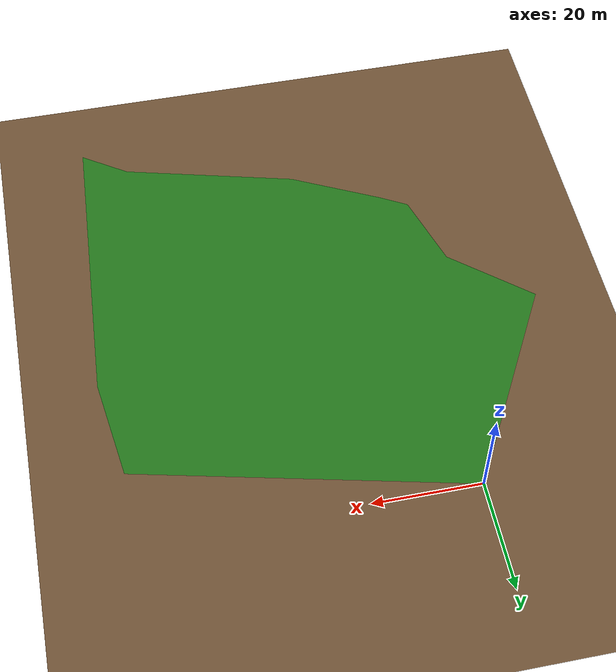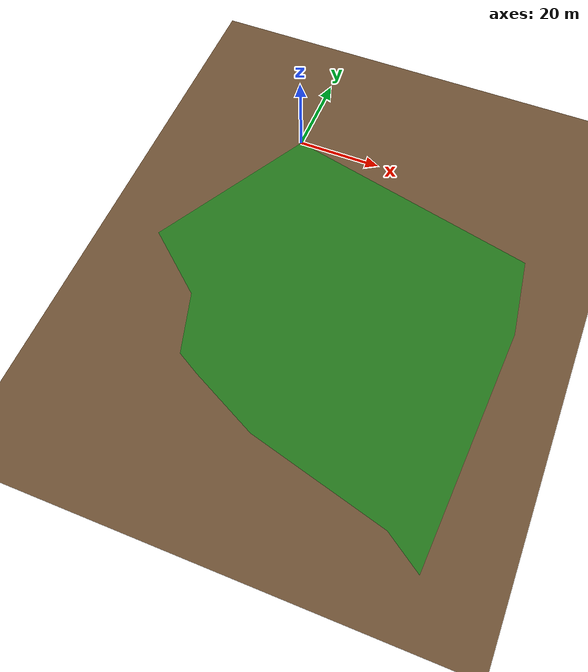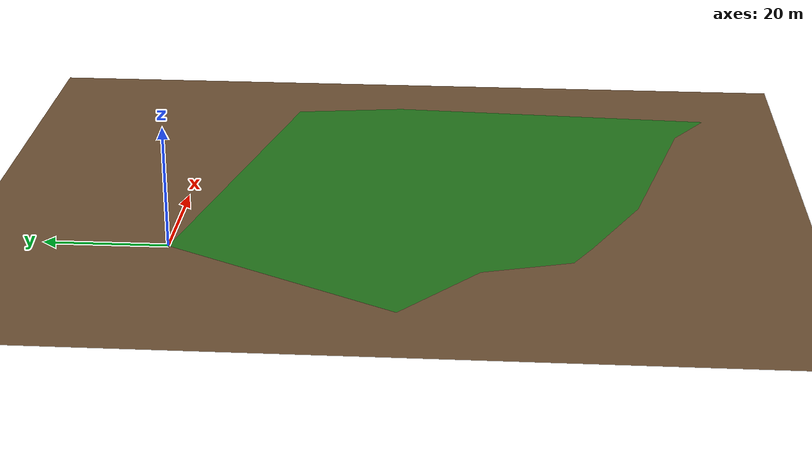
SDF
<?xml version="1.0"?>
<sdf version="1.9">
  <world name="crop_field">
    <physics type="ode">
      <max_step_size>0.004</max_step_size>
      <real_time_factor>1.0</real_time_factor>
      <real_time_update_rate>250</real_time_update_rate>
    </physics>
    <gravity>0 0 -9.8</gravity>
    <magnetic_field>6e-06 2.3e-05 -4.2e-05</magnetic_field>
    <atmosphere type="adiabatic"/>

    <plugin name="gz::sim::systems::Physics" filename="gz-sim-physics-system"/>
    <plugin name="gz::sim::systems::UserCommands" filename="gz-sim-user-commands-system"/>
    <plugin name="gz::sim::systems::SceneBroadcaster" filename="gz-sim-scene-broadcaster-system"/>
    <plugin name="gz::sim::systems::Contact" filename="gz-sim-contact-system"/>
    <plugin name="gz::sim::systems::Imu" filename="gz-sim-imu-system"/>
    <plugin name="gz::sim::systems::Magnetometer" filename="gz-sim-magnetometer-system"/>
    <plugin name="gz::sim::systems::AirPressure" filename="gz-sim-air-pressure-system"/>
    <plugin name="gz::sim::systems::AirSpeed" filename="gz-sim-air-speed-system"/>
    <plugin name="gz::sim::systems::ApplyLinkWrench" filename="gz-sim-apply-link-wrench-system"/>
    <plugin name="gz::sim::systems::NavSat" filename="gz-sim-navsat-system"/>
    <plugin name="gz::sim::systems::Sensors" filename="gz-sim-sensors-system">
      <render_engine>ogre2</render_engine>
    </plugin>

    <scene>
      <grid>false</grid>
      <ambient>0.4 0.4 0.4 1</ambient>
      <background>0.55 0.75 0.95 1</background>
      <shadows>true</shadows>
    </scene>

    <spherical_coordinates>
      <surface_model>EARTH_WGS84</surface_model>
      <world_frame_orientation>ENU</world_frame_orientation>
      <latitude_deg>0.0</latitude_deg>
      <longitude_deg>0.0</longitude_deg>
      <elevation>0.0</elevation>
      <heading_deg>0</heading_deg>
    </spherical_coordinates>

    <light name="sunUTC" type="directional">
      <pose>0 0 500 0 0 0</pose>
      <cast_shadows>true</cast_shadows>
      <intensity>1.0</intensity>
      <direction>0.001 0.625 -0.78</direction>
      <diffuse>0.904 0.904 0.904 1</diffuse>
      <specular>0.271 0.271 0.271 1</specular>
      <attenuation>
        <range>2000</range>
        <linear>0</linear>
        <constant>1</constant>
        <quadratic>0</quadratic>
      </attenuation>
    </light>

    <!-- Bare-earth ground plane surrounding the field -->
    <model name="ground_plane">
      <static>true</static>
      <link name="link">
        <collision name="collision">
          <geometry>
            <plane>
              <normal>0 0 1</normal>
              <size>500 500</size>
            </plane>
          </geometry>
          <surface>
            <friction>
              <ode/>
            </friction>
            <bounce/>
            <contact/>
          </surface>
        </collision>
        <visual name="visual">
          <geometry>
            <plane>
              <normal>0 0 1</normal>
              <size>500 500</size>
            </plane>
          </geometry>
          <material>
            <ambient>0.30 0.22 0.14 1</ambient>
            <diffuse>0.42 0.31 0.20 1</diffuse>
            <specular>0.0 0.0 0.0 1</specular>
          </material>
        </visual>
      </link>
    </model>

    <!-- Green field, same size and shape as the planner's field polygon -->
    <include>
      <uri>model://crop_field</uri>
      <pose>0 0 0 0 0 0</pose>
    </include>
  </world>
</sdf>

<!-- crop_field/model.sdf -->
<sdf version="1.9">
  <model name="crop_field">
    <static>true</static>
    <!-- Lifted 1 cm above the ground plane to avoid z-fighting -->
    <pose>0 0 0.01 0 0 0</pose>
    <link name="field_link">
      <visual name="field_visual">
        <geometry>
          <mesh>
            <uri>model://crop_field/meshes/field.obj</uri>
          </mesh>
        </geometry>
        <material>
          <ambient>0.05 0.20 0.03 1</ambient>
          <diffuse>0.13 0.45 0.10 1</diffuse>
          <specular>0.0 0.0 0.0 1</specular>
        </material>
      </visual>
    </link>
  </model>
</sdf>
